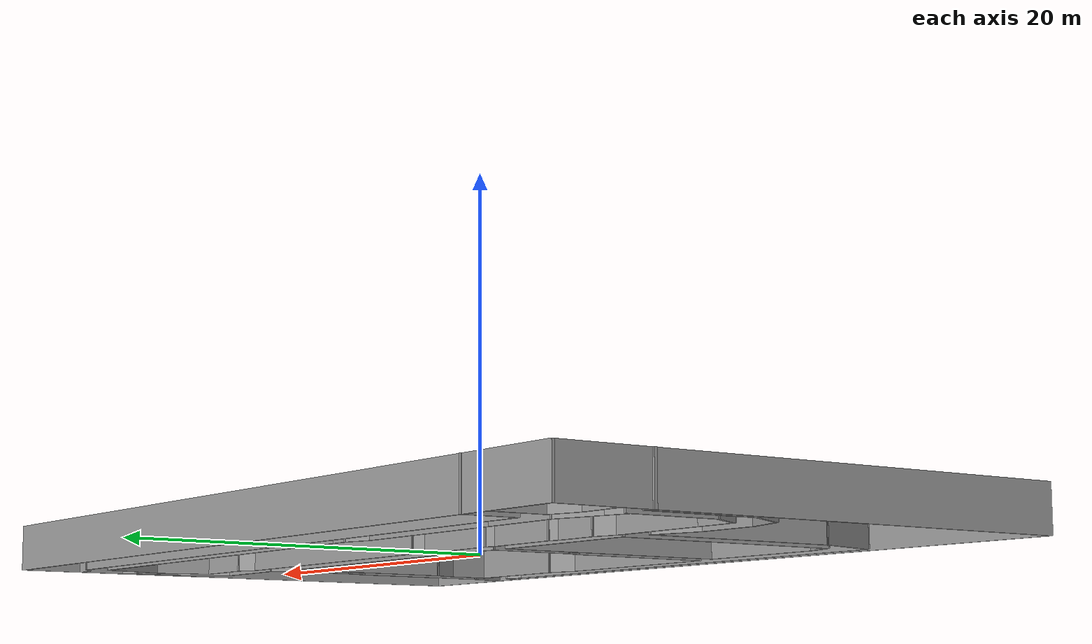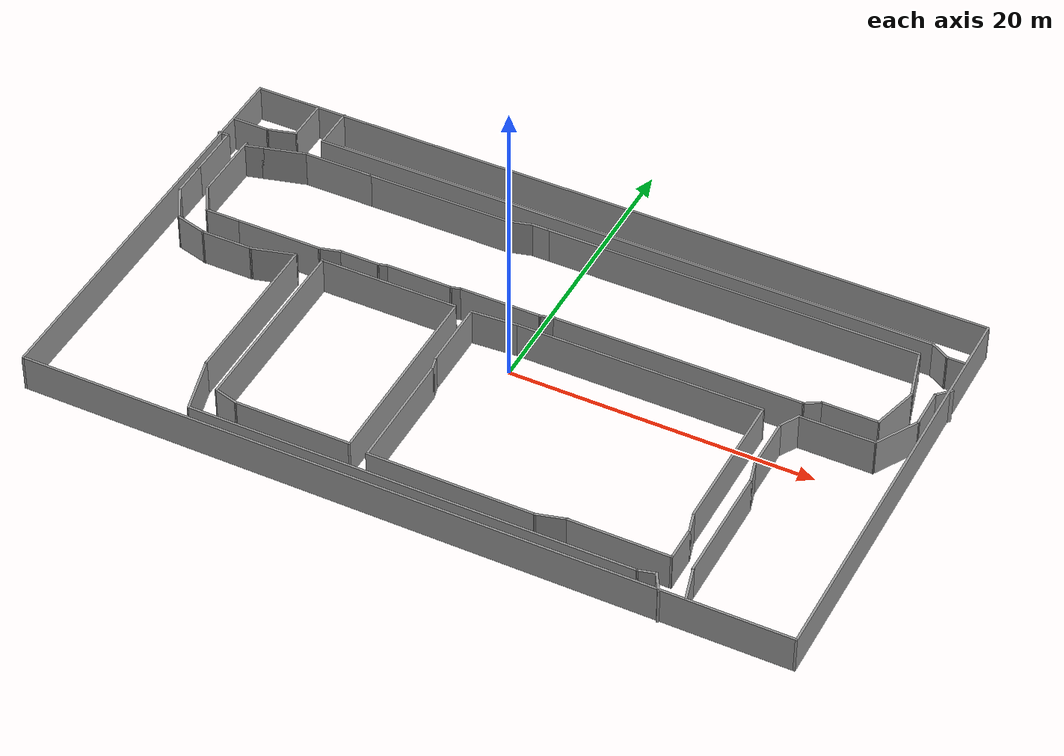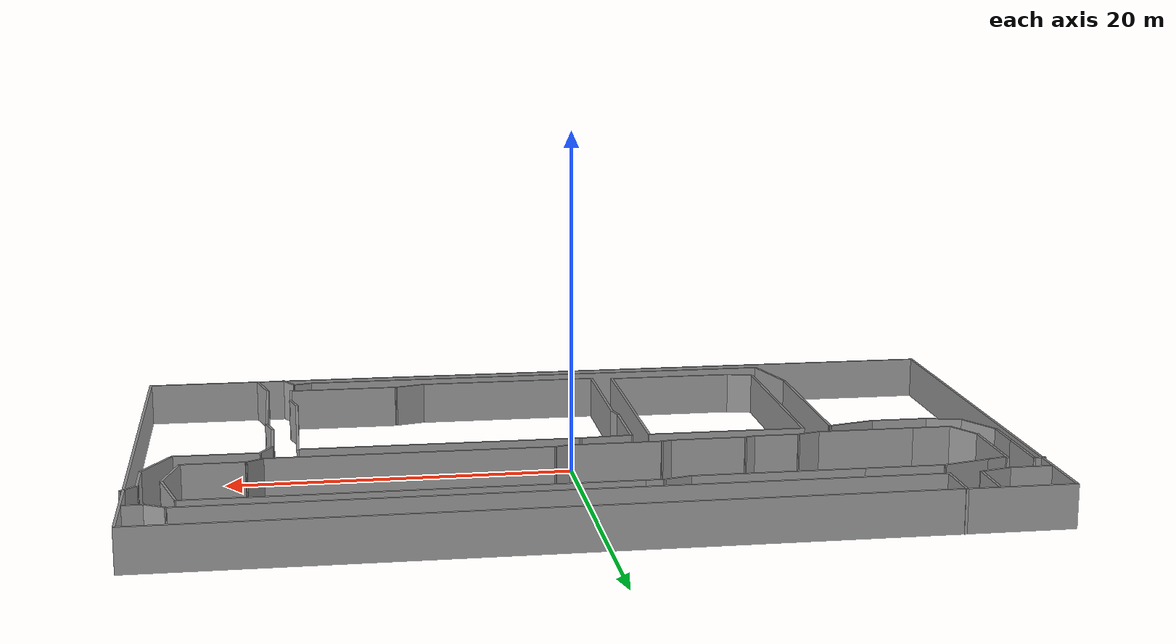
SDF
<?xml version='1.0'?>
<sdf version='1.6'>
  <model name='campus2'>
    <pose frame=''>-0.050458 -0.075306 0 0 -0 0</pose>
    <link name='Wall_100'>
      <collision name='Wall_100_Collision'>
        <geometry>
          <box>
            <size>5.5 0.15 2.5</size>
          </box>
        </geometry>
        <pose frame=''>0 0 1.25 0 -0 0</pose>
      </collision>
      <visual name='Wall_100_Visual'>
        <pose frame=''>0 0 1.25 0 -0 0</pose>
        <geometry>
          <box>
            <size>5.5 0.15 2.5</size>
          </box>
        </geometry>
        <material>
          <script>
            <uri>file://media/materials/scripts/gazebo.material</uri>
            <name>Gazebo/Grey</name>
          </script>
          <ambient>1 1 1 1</ambient>
        </material>
      </visual>
      <pose frame=''>-2.06042 3.03584 0 0 -0 0</pose>
    </link>
    <link name='Wall_101'>
      <collision name='Wall_101_Collision'>
        <geometry>
          <box>
            <size>1 0.15 2.5</size>
          </box>
        </geometry>
        <pose frame=''>0 0 1.25 0 -0 0</pose>
      </collision>
      <visual name='Wall_101_Visual'>
        <pose frame=''>0 0 1.25 0 -0 0</pose>
        <geometry>
          <box>
            <size>1 0.15 2.5</size>
          </box>
        </geometry>
        <material>
          <script>
            <uri>file://media/materials/scripts/gazebo.material</uri>
            <name>Gazebo/Grey</name>
          </script>
          <ambient>1 1 1 1</ambient>
        </material>
      </visual>
      <pose frame=''>1.0251 3.14583 0 0 -0 0.261799</pose>
    </link>
    <link name='Wall_102'>
      <collision name='Wall_102_Collision'>
        <geometry>
          <box>
            <size>16.5 0.15 2.5</size>
          </box>
        </geometry>
        <pose frame=''>0 0 1.25 0 -0 0</pose>
      </collision>
      <visual name='Wall_102_Visual'>
        <pose frame=''>0 0 1.25 0 -0 0</pose>
        <geometry>
          <box>
            <size>16.5 0.15 2.5</size>
          </box>
        </geometry>
        <material>
          <script>
            <uri>file://media/materials/scripts/gazebo.material</uri>
            <name>Gazebo/Grey</name>
          </script>
          <ambient>1 1 1 1</ambient>
        </material>
      </visual>
      <pose frame=''>9.61062 3.25583 0 0 -0 0</pose>
    </link>
    <link name='Wall_103'>
      <collision name='Wall_103_Collision'>
        <geometry>
          <box>
            <size>1.25 0.15 2.5</size>
          </box>
        </geometry>
        <pose frame=''>0 0 1.25 0 -0 0</pose>
      </collision>
      <visual name='Wall_103_Visual'>
        <pose frame=''>0 0 1.25 0 -0 0</pose>
        <geometry>
          <box>
            <size>1.25 0.15 2.5</size>
          </box>
        </geometry>
        <material>
          <script>
            <uri>file://media/materials/scripts/gazebo.material</uri>
            <name>Gazebo/Grey</name>
          </script>
          <ambient>1 1 1 1</ambient>
        </material>
      </visual>
      <pose frame=''>18.2619 3.53083 0 0 -0 0.523599</pose>
    </link>
    <link name='Wall_104'>
      <collision name='Wall_104_Collision'>
        <geometry>
          <box>
            <size>3.75 0.15 2.5</size>
          </box>
        </geometry>
        <pose frame=''>0 0 1.25 0 -0 0</pose>
      </collision>
      <visual name='Wall_104_Visual'>
        <pose frame=''>0 0 1.25 0 -0 0</pose>
        <geometry>
          <box>
            <size>3.75 0.15 2.5</size>
          </box>
        </geometry>
        <material>
          <script>
            <uri>file://media/materials/scripts/gazebo.material</uri>
            <name>Gazebo/Grey</name>
          </script>
          <ambient>1 1 1 1</ambient>
        </material>
      </visual>
      <pose frame=''>20.5382 3.80583 0 0 -0 0</pose>
    </link>
    <link name='Wall_105'>
      <collision name='Wall_105_Collision'>
        <geometry>
          <box>
            <size>3.25 0.15 2.5</size>
          </box>
        </geometry>
        <pose frame=''>0 0 1.25 0 -0 0</pose>
      </collision>
      <visual name='Wall_105_Visual'>
        <pose frame=''>0 0 1.25 0 -0 0</pose>
        <geometry>
          <box>
            <size>3.25 0.15 2.5</size>
          </box>
        </geometry>
        <material>
          <script>
            <uri>file://media/materials/scripts/gazebo.material</uri>
            <name>Gazebo/Grey</name>
          </script>
          <ambient>1 1 1 1</ambient>
        </material>
      </visual>
      <pose frame=''>22.7394 5.30302 0 0 -0 1.309</pose>
    </link>
    <link name='Wall_106'>
      <collision name='Wall_106_Collision'>
        <geometry>
          <box>
            <size>3.75 0.15 2.5</size>
          </box>
        </geometry>
        <pose frame=''>0 0 1.25 0 -0 0</pose>
      </collision>
      <visual name='Wall_106_Visual'>
        <pose frame=''>0 0 1.25 0 -0 0</pose>
        <geometry>
          <box>
            <size>3.75 0.15 2.5</size>
          </box>
        </geometry>
        <material>
          <script>
            <uri>file://media/materials/scripts/gazebo.material</uri>
            <name>Gazebo/Grey</name>
          </script>
          <ambient>1 1 1 1</ambient>
        </material>
      </visual>
      <pose frame=''>22.6747 8.53887 0 0 -0 1.8326</pose>
    </link>
    <link name='Wall_107'>
      <collision name='Wall_107_Collision'>
        <geometry>
          <box>
            <size>24.75 0.15 2.5</size>
          </box>
        </geometry>
        <pose frame=''>0 0 1.25 0 -0 0</pose>
      </collision>
      <visual name='Wall_107_Visual'>
        <pose frame=''>0 0 1.25 0 -0 0</pose>
        <geometry>
          <box>
            <size>24.75 0.15 2.5</size>
          </box>
        </geometry>
        <material>
          <script>
            <uri>file://media/materials/scripts/gazebo.material</uri>
            <name>Gazebo/Grey</name>
          </script>
          <ambient>1 1 1 1</ambient>
        </material>
      </visual>
      <pose frame=''>9.90883 10.2775 0 0 -0 3.14159</pose>
    </link>
    <link name='Wall_108'>
      <collision name='Wall_108_Collision'>
        <geometry>
          <box>
            <size>1.25 0.15 2.5</size>
          </box>
        </geometry>
        <pose frame=''>0 0 1.25 0 -0 0</pose>
      </collision>
      <visual name='Wall_108_Visual'>
        <pose frame=''>0 0 1.25 0 -0 0</pose>
        <geometry>
          <box>
            <size>1.25 0.15 2.5</size>
          </box>
        </geometry>
        <material>
          <script>
            <uri>file://media/materials/scripts/gazebo.material</uri>
            <name>Gazebo/Grey</name>
          </script>
          <ambient>1 1 1 1</ambient>
        </material>
      </visual>
      <pose frame=''>-2.94116 10.2775 0 0 -0 3.14159</pose>
    </link>
    <link name='Wall_109'>
      <collision name='Wall_109_Collision'>
        <geometry>
          <box>
            <size>1.75 0.15 2.5</size>
          </box>
        </geometry>
        <pose frame=''>0 0 1.25 0 -0 0</pose>
      </collision>
      <visual name='Wall_109_Visual'>
        <pose frame=''>0 0 1.25 0 -0 0</pose>
        <geometry>
          <box>
            <size>1.75 0.15 2.5</size>
          </box>
        </geometry>
        <material>
          <script>
            <uri>file://media/materials/scripts/gazebo.material</uri>
            <name>Gazebo/Grey</name>
          </script>
          <ambient>1 1 1 1</ambient>
        </material>
      </visual>
      <pose frame=''>-4.26391 10.0705 0 0 0 -2.87979</pose>
    </link>
    <link name='Wall_110'>
      <collision name='Wall_110_Collision'>
        <geometry>
          <box>
            <size>9.75 0.15 2.5</size>
          </box>
        </geometry>
        <pose frame=''>0 0 1.25 0 -0 0</pose>
      </collision>
      <visual name='Wall_110_Visual'>
        <pose frame=''>0 0 1.25 0 -0 0</pose>
        <geometry>
          <box>
            <size>9.75 0.15 2.5</size>
          </box>
        </geometry>
        <material>
          <script>
            <uri>file://media/materials/scripts/gazebo.material</uri>
            <name>Gazebo/Grey</name>
          </script>
          <ambient>1 1 1 1</ambient>
        </material>
      </visual>
      <pose frame=''>-9.83665 9.86342 0 0 -0 3.14159</pose>
    </link>
    <link name='Wall_111'>
      <collision name='Wall_111_Collision'>
        <geometry>
          <box>
            <size>4.75 0.15 2.5</size>
          </box>
        </geometry>
        <pose frame=''>0 0 1.25 0 -0 0</pose>
      </collision>
      <visual name='Wall_111_Visual'>
        <pose frame=''>0 0 1.25 0 -0 0</pose>
        <geometry>
          <box>
            <size>4.75 0.15 2.5</size>
          </box>
        </geometry>
        <material>
          <script>
            <uri>file://media/materials/scripts/gazebo.material</uri>
            <name>Gazebo/Grey</name>
          </script>
          <ambient>1 1 1 1</ambient>
        </material>
      </visual>
      <pose frame=''>-16.9366 9.86342 0 0 -0 3.14159</pose>
    </link>
    <link name='Wall_112'>
      <collision name='Wall_112_Collision'>
        <geometry>
          <box>
            <size>3 0.15 2.5</size>
          </box>
        </geometry>
        <pose frame=''>0 0 1.25 0 -0 0</pose>
      </collision>
      <visual name='Wall_112_Visual'>
        <pose frame=''>0 0 1.25 0 -0 0</pose>
        <geometry>
          <box>
            <size>3 0.15 2.5</size>
          </box>
        </geometry>
        <material>
          <script>
            <uri>file://media/materials/scripts/gazebo.material</uri>
            <name>Gazebo/Grey</name>
          </script>
          <ambient>1 1 1 1</ambient>
        </material>
      </visual>
      <pose frame=''>-20.6131 9.49461 0 0 0 -2.87979</pose>
    </link>
    <link name='Wall_113'>
      <collision name='Wall_113_Collision'>
        <geometry>
          <box>
            <size>1.25 0.15 2.5</size>
          </box>
        </geometry>
        <pose frame=''>0 0 1.25 0 -0 0</pose>
      </collision>
      <visual name='Wall_113_Visual'>
        <pose frame=''>0 0 1.25 0 -0 0</pose>
        <geometry>
          <box>
            <size>1.25 0.15 2.5</size>
          </box>
        </geometry>
        <material>
          <script>
            <uri>file://media/materials/scripts/gazebo.material</uri>
            <name>Gazebo/Grey</name>
          </script>
          <ambient>1 1 1 1</ambient>
        </material>
      </visual>
      <pose frame=''>-22.5208 8.98344 0 0 0 -2.87979</pose>
    </link>
    <link name='Wall_115'>
      <collision name='Wall_115_Collision'>
        <geometry>
          <box>
            <size>0.75 0.15 2.5</size>
          </box>
        </geometry>
        <pose frame=''>0 0 1.25 0 -0 0</pose>
      </collision>
      <visual name='Wall_115_Visual'>
        <pose frame=''>0 0 1.25 0 -0 0</pose>
        <geometry>
          <box>
            <size>0.75 0.15 2.5</size>
          </box>
        </geometry>
        <material>
          <script>
            <uri>file://media/materials/scripts/gazebo.material</uri>
            <name>Gazebo/Grey</name>
          </script>
          <ambient>1 1 1 1</ambient>
        </material>
      </visual>
      <pose frame=''>-24.8965 9.23068 0 0 -0 0</pose>
    </link>
    <link name='Wall_116'>
      <collision name='Wall_116_Collision'>
        <geometry>
          <box>
            <size>3.75 0.15 2.5</size>
          </box>
        </geometry>
        <pose frame=''>0 0 1.25 0 -0 0</pose>
      </collision>
      <visual name='Wall_116_Visual'>
        <pose frame=''>0 0 1.25 0 -0 0</pose>
        <geometry>
          <box>
            <size>3.75 0.15 2.5</size>
          </box>
        </geometry>
        <material>
          <script>
            <uri>file://media/materials/scripts/gazebo.material</uri>
            <name>Gazebo/Grey</name>
          </script>
          <ambient>1 1 1 1</ambient>
        </material>
      </visual>
      <pose frame=''>-24.5965 7.43068 0 0 0 -1.5708</pose>
    </link>
    <link name='Wall_117'>
      <collision name='Wall_117_Collision'>
        <geometry>
          <box>
            <size>2.5 0.15 2.5</size>
          </box>
        </geometry>
        <pose frame=''>0 0 1.25 0 -0 0</pose>
      </collision>
      <visual name='Wall_117_Visual'>
        <pose frame=''>0 0 1.25 0 -0 0</pose>
        <geometry>
          <box>
            <size>2.5 0.15 2.5</size>
          </box>
        </geometry>
        <material>
          <script>
            <uri>file://media/materials/scripts/gazebo.material</uri>
            <name>Gazebo/Grey</name>
          </script>
          <ambient>1 1 1 1</ambient>
        </material>
      </visual>
      <pose frame=''>-24.5965 4.45568 0 0 0 -1.5708</pose>
    </link>
    <link name='Wall_118'>
      <collision name='Wall_118_Collision'>
        <geometry>
          <box>
            <size>2.75 0.15 2.5</size>
          </box>
        </geometry>
        <pose frame=''>0 0 1.25 0 -0 0</pose>
      </collision>
      <visual name='Wall_118_Visual'>
        <pose frame=''>0 0 1.25 0 -0 0</pose>
        <geometry>
          <box>
            <size>2.75 0.15 2.5</size>
          </box>
        </geometry>
        <material>
          <script>
            <uri>file://media/materials/scripts/gazebo.material</uri>
            <name>Gazebo/Grey</name>
          </script>
          <ambient>1 1 1 1</ambient>
        </material>
      </visual>
      <pose frame=''>-23.9465 2.15485 0 0 0 -1.0472</pose>
    </link>
    <link name='Wall_119'>
      <collision name='Wall_119_Collision'>
        <geometry>
          <box>
            <size>2.25 0.15 2.5</size>
          </box>
        </geometry>
        <pose frame=''>0 0 1.25 0 -0 0</pose>
      </collision>
      <visual name='Wall_119_Visual'>
        <pose frame=''>0 0 1.25 0 -0 0</pose>
        <geometry>
          <box>
            <size>2.25 0.15 2.5</size>
          </box>
        </geometry>
        <material>
          <script>
            <uri>file://media/materials/scripts/gazebo.material</uri>
            <name>Gazebo/Grey</name>
          </script>
          <ambient>1 1 1 1</ambient>
        </material>
      </visual>
      <pose frame=''>-22.2823 0.757255 0 0 0 -0.261799</pose>
    </link>
    <link name='Wall_120'>
      <collision name='Wall_120_Collision'>
        <geometry>
          <box>
            <size>3.5 0.15 2.5</size>
          </box>
        </geometry>
        <pose frame=''>0 0 1.25 0 -0 0</pose>
      </collision>
      <visual name='Wall_120_Visual'>
        <pose frame=''>0 0 1.25 0 -0 0</pose>
        <geometry>
          <box>
            <size>3.5 0.15 2.5</size>
          </box>
        </geometry>
        <material>
          <script>
            <uri>file://media/materials/scripts/gazebo.material</uri>
            <name>Gazebo/Grey</name>
          </script>
          <ambient>1 1 1 1</ambient>
        </material>
      </visual>
      <pose frame=''>-19.5931 0.485495 0 0 -0 0</pose>
    </link>
    <link name='Wall_121'>
      <collision name='Wall_121_Collision'>
        <geometry>
          <box>
            <size>3 0.15 2.5</size>
          </box>
        </geometry>
        <pose frame=''>0 0 1.25 0 -0 0</pose>
      </collision>
      <visual name='Wall_121_Visual'>
        <pose frame=''>0 0 1.25 0 -0 0</pose>
        <geometry>
          <box>
            <size>3 0.15 2.5</size>
          </box>
        </geometry>
        <material>
          <script>
            <uri>file://media/materials/scripts/gazebo.material</uri>
            <name>Gazebo/Grey</name>
          </script>
          <ambient>1 1 1 1</ambient>
        </material>
      </visual>
      <pose frame=''>-16.5416 0.854312 0 0 -0 0.261799</pose>
    </link>
    <link name='Wall_122'>
      <collision name='Wall_122_Collision'>
        <geometry>
          <box>
            <size>11 0.15 2.5</size>
          </box>
        </geometry>
        <pose frame=''>0 0 1.25 0 -0 0</pose>
      </collision>
      <visual name='Wall_122_Visual'>
        <pose frame=''>0 0 1.25 0 -0 0</pose>
        <geometry>
          <box>
            <size>11 0.15 2.5</size>
          </box>
        </geometry>
        <material>
          <script>
            <uri>file://media/materials/scripts/gazebo.material</uri>
            <name>Gazebo/Grey</name>
          </script>
          <ambient>1 1 1 1</ambient>
        </material>
      </visual>
      <pose frame=''>-15.1652 -4.20187 0 0 0 -1.5708</pose>
    </link>
    <link name='Wall_123'>
      <collision name='Wall_123_Collision'>
        <geometry>
          <box>
            <size>4 0.15 2.5</size>
          </box>
        </geometry>
        <pose frame=''>0 0 1.25 0 -0 0</pose>
      </collision>
      <visual name='Wall_123_Visual'>
        <pose frame=''>0 0 1.25 0 -0 0</pose>
        <geometry>
          <box>
            <size>4 0.15 2.5</size>
          </box>
        </geometry>
        <material>
          <script>
            <uri>file://media/materials/scripts/gazebo.material</uri>
            <name>Gazebo/Grey</name>
          </script>
          <ambient>1 1 1 1</ambient>
        </material>
      </visual>
      <pose frame=''>-14.667 -11.4863 0 0 0 -1.309</pose>
    </link>
    <link name='Wall_124'>
      <collision name='Wall_124_Collision'>
        <geometry>
          <box>
            <size>29.25 0.15 2.5</size>
          </box>
        </geometry>
        <pose frame=''>0 0 1.25 0 -0 0</pose>
      </collision>
      <visual name='Wall_124_Visual'>
        <pose frame=''>0 0 1.25 0 -0 0</pose>
        <geometry>
          <box>
            <size>29.25 0.15 2.5</size>
          </box>
        </geometry>
        <material>
          <script>
            <uri>file://media/materials/scripts/gazebo.material</uri>
            <name>Gazebo/Grey</name>
          </script>
          <ambient>1 1 1 1</ambient>
        </material>
      </visual>
      <pose frame=''>0.381263 -13.3457 0 0 -0 0</pose>
    </link>
    <link name='Wall_125'>
      <collision name='Wall_125_Collision'>
        <geometry>
          <box>
            <size>1.25 0.15 2.5</size>
          </box>
        </geometry>
        <pose frame=''>0 0 1.25 0 -0 0</pose>
      </collision>
      <visual name='Wall_125_Visual'>
        <pose frame=''>0 0 1.25 0 -0 0</pose>
        <geometry>
          <box>
            <size>1.25 0.15 2.5</size>
          </box>
        </geometry>
        <material>
          <script>
            <uri>file://media/materials/scripts/gazebo.material</uri>
            <name>Gazebo/Grey</name>
          </script>
          <ambient>1 1 1 1</ambient>
        </material>
      </visual>
      <pose frame=''>15.4625 -13.2033 0 0 -0 0.261799</pose>
    </link>
    <link name='Wall_126'>
      <collision name='Wall_126_Collision'>
        <geometry>
          <box>
            <size>1.5 0.15 2.5</size>
          </box>
        </geometry>
        <pose frame=''>0 0 1.25 0 -0 0</pose>
      </collision>
      <visual name='Wall_126_Visual'>
        <pose frame=''>0 0 1.25 0 -0 0</pose>
        <geometry>
          <box>
            <size>1.5 0.15 2.5</size>
          </box>
        </geometry>
        <material>
          <script>
            <uri>file://media/materials/scripts/gazebo.material</uri>
            <name>Gazebo/Grey</name>
          </script>
          <ambient>1 1 1 1</ambient>
        </material>
      </visual>
      <pose frame=''>16.3313 -13.6456 0 0 0 -1.0472</pose>
    </link>
    <link name='Wall_128'>
      <collision name='Wall_128_Collision'>
        <geometry>
          <box>
            <size>1.25 0.15 2.5</size>
          </box>
        </geometry>
        <pose frame=''>0 0 1.25 0 -0 0</pose>
      </collision>
      <visual name='Wall_128_Visual'>
        <pose frame=''>0 0 1.25 0 -0 0</pose>
        <geometry>
          <box>
            <size>1.25 0.15 2.5</size>
          </box>
        </geometry>
        <material>
          <script>
            <uri>file://media/materials/scripts/gazebo.material</uri>
            <name>Gazebo/Grey</name>
          </script>
          <ambient>1 1 1 1</ambient>
        </material>
      </visual>
      <pose frame=''>24.7765 7.81778 0 0 0 -2.35619</pose>
    </link>
    <link name='Wall_129'>
      <collision name='Wall_129_Collision'>
        <geometry>
          <box>
            <size>2.75 0.15 2.5</size>
          </box>
        </geometry>
        <pose frame=''>0 0 1.25 0 -0 0</pose>
      </collision>
      <visual name='Wall_129_Visual'>
        <pose frame=''>0 0 1.25 0 -0 0</pose>
        <geometry>
          <box>
            <size>2.75 0.15 2.5</size>
          </box>
        </geometry>
        <material>
          <script>
            <uri>file://media/materials/scripts/gazebo.material</uri>
            <name>Gazebo/Grey</name>
          </script>
          <ambient>1 1 1 1</ambient>
        </material>
      </visual>
      <pose frame=''>24.3876 6.12887 0 0 0 -1.5708</pose>
    </link>
    <link name='Wall_130'>
      <collision name='Wall_130_Collision'>
        <geometry>
          <box>
            <size>3.25 0.15 2.5</size>
          </box>
        </geometry>
        <pose frame=''>0 0 1.25 0 -0 0</pose>
      </collision>
      <visual name='Wall_130_Visual'>
        <pose frame=''>0 0 1.25 0 -0 0</pose>
        <geometry>
          <box>
            <size>3.25 0.15 2.5</size>
          </box>
        </geometry>
        <material>
          <script>
            <uri>file://media/materials/scripts/gazebo.material</uri>
            <name>Gazebo/Grey</name>
          </script>
          <ambient>1 1 1 1</ambient>
        </material>
      </visual>
      <pose frame=''>23.6126 3.48653 0 0 0 -2.0944</pose>
    </link>
    <link name='Wall_131'>
      <collision name='Wall_131_Collision'>
        <geometry>
          <box>
            <size>5 0.15 2.5</size>
          </box>
        </geometry>
        <pose frame=''>0 0 1.25 0 -0 0</pose>
      </collision>
      <visual name='Wall_131_Visual'>
        <pose frame=''>0 0 1.25 0 -0 0</pose>
        <geometry>
          <box>
            <size>5 0.15 2.5</size>
          </box>
        </geometry>
        <material>
          <script>
            <uri>file://media/materials/scripts/gazebo.material</uri>
            <name>Gazebo/Grey</name>
          </script>
          <ambient>1 1 1 1</ambient>
        </material>
      </visual>
      <pose frame=''>20.4126 2.14419 0 0 -0 3.14159</pose>
    </link>
    <link name='Wall_132'>
      <collision name='Wall_132_Collision'>
        <geometry>
          <box>
            <size>1.5 0.15 2.5</size>
          </box>
        </geometry>
        <pose frame=''>0 0 1.25 0 -0 0</pose>
      </collision>
      <visual name='Wall_132_Visual'>
        <pose frame=''>0 0 1.25 0 -0 0</pose>
        <geometry>
          <box>
            <size>1.5 0.15 2.5</size>
          </box>
        </geometry>
        <material>
          <script>
            <uri>file://media/materials/scripts/gazebo.material</uri>
            <name>Gazebo/Grey</name>
          </script>
          <ambient>1 1 1 1</ambient>
        </material>
      </visual>
      <pose frame=''>17.6501 1.55962 0 0 0 -2.0944</pose>
    </link>
    <link name='Wall_133'>
      <collision name='Wall_133_Collision'>
        <geometry>
          <box>
            <size>3.75 0.15 2.5</size>
          </box>
        </geometry>
        <pose frame=''>0 0 1.25 0 -0 0</pose>
      </collision>
      <visual name='Wall_133_Visual'>
        <pose frame=''>0 0 1.25 0 -0 0</pose>
        <geometry>
          <box>
            <size>3.75 0.15 2.5</size>
          </box>
        </geometry>
        <material>
          <script>
            <uri>file://media/materials/scripts/gazebo.material</uri>
            <name>Gazebo/Grey</name>
          </script>
          <ambient>1 1 1 1</ambient>
        </material>
      </visual>
      <pose frame=''>17.3126 -0.824945 0 0 0 -1.5708</pose>
    </link>
    <link name='Wall_134'>
      <collision name='Wall_134_Collision'>
        <geometry>
          <box>
            <size>1.5 0.15 2.5</size>
          </box>
        </geometry>
        <pose frame=''>0 0 1.25 0 -0 0</pose>
      </collision>
      <visual name='Wall_134_Visual'>
        <pose frame=''>0 0 1.25 0 -0 0</pose>
        <geometry>
          <box>
            <size>1.5 0.15 2.5</size>
          </box>
        </geometry>
        <material>
          <script>
            <uri>file://media/materials/scripts/gazebo.material</uri>
            <name>Gazebo/Grey</name>
          </script>
          <ambient>1 1 1 1</ambient>
        </material>
      </visual>
      <pose frame=''>17.4873 -3.27694 0 0 0 -1.309</pose>
    </link>
    <link name='Wall_135'>
      <collision name='Wall_135_Collision'>
        <geometry>
          <box>
            <size>8 0.15 2.5</size>
          </box>
        </geometry>
        <pose frame=''>0 0 1.25 0 -0 0</pose>
      </collision>
      <visual name='Wall_135_Visual'>
        <pose frame=''>0 0 1.25 0 -0 0</pose>
        <geometry>
          <box>
            <size>8 0.15 2.5</size>
          </box>
        </geometry>
        <material>
          <script>
            <uri>file://media/materials/scripts/gazebo.material</uri>
            <name>Gazebo/Grey</name>
          </script>
          <ambient>1 1 1 1</ambient>
        </material>
      </visual>
      <pose frame=''>17.662 -7.85395 0 0 0 -1.5708</pose>
    </link>
    <link name='Wall_136'>
      <collision name='Wall_136_Collision'>
        <geometry>
          <box>
            <size>2.5 0.15 2.5</size>
          </box>
        </geometry>
        <pose frame=''>0 0 1.25 0 -0 0</pose>
      </collision>
      <visual name='Wall_136_Visual'>
        <pose frame=''>0 0 1.25 0 -0 0</pose>
        <geometry>
          <box>
            <size>2.5 0.15 2.5</size>
          </box>
        </geometry>
        <material>
          <script>
            <uri>file://media/materials/scripts/gazebo.material</uri>
            <name>Gazebo/Grey</name>
          </script>
          <ambient>1 1 1 1</ambient>
        </material>
      </visual>
      <pose frame=''>17.9662 -12.9139 0 0 0 -1.309</pose>
    </link>
    <link name='Wall_138'>
      <collision name='Wall_138_Collision'>
        <geometry>
          <box>
            <size>9.25 0.15 2.5</size>
          </box>
        </geometry>
        <pose frame=''>0 0 1.25 0 -0 0</pose>
      </collision>
      <visual name='Wall_138_Visual'>
        <pose frame=''>0 0 1.25 0 -0 0</pose>
        <geometry>
          <box>
            <size>9.25 0.15 2.5</size>
          </box>
        </geometry>
        <material>
          <script>
            <uri>file://media/materials/scripts/gazebo.material</uri>
            <name>Gazebo/Grey</name>
          </script>
          <ambient>1 1 1 1</ambient>
        </material>
      </visual>
      <pose frame=''>-8.89424 1.50417 0 0 -0 3.14159</pose>
    </link>
    <link name='Wall_139'>
      <collision name='Wall_139_Collision'>
        <geometry>
          <box>
            <size>13 0.15 2.5</size>
          </box>
        </geometry>
        <pose frame=''>0 0 1.25 0 -0 0</pose>
      </collision>
      <visual name='Wall_139_Visual'>
        <pose frame=''>0 0 1.25 0 -0 0</pose>
        <geometry>
          <box>
            <size>13 0.15 2.5</size>
          </box>
        </geometry>
        <material>
          <script>
            <uri>file://media/materials/scripts/gazebo.material</uri>
            <name>Gazebo/Grey</name>
          </script>
          <ambient>1 1 1 1</ambient>
        </material>
      </visual>
      <pose frame=''>-13.4442 -4.92083 0 0 0 -1.5708</pose>
    </link>
    <link name='Wall_140'>
      <collision name='Wall_140_Collision'>
        <geometry>
          <box>
            <size>1.75 0.15 2.5</size>
          </box>
        </geometry>
        <pose frame=''>0 0 1.25 0 -0 0</pose>
      </collision>
      <visual name='Wall_140_Visual'>
        <pose frame=''>0 0 1.25 0 -0 0</pose>
        <geometry>
          <box>
            <size>1.75 0.15 2.5</size>
          </box>
        </geometry>
        <material>
          <script>
            <uri>file://media/materials/scripts/gazebo.material</uri>
            <name>Gazebo/Grey</name>
          </script>
          <ambient>1 1 1 1</ambient>
        </material>
      </visual>
      <pose frame=''>-12.6715 -11.5529 0 0 0 -0.261799</pose>
    </link>
    <link name='Wall_141'>
      <collision name='Wall_141_Collision'>
        <geometry>
          <box>
            <size>7.75 0.15 2.5</size>
          </box>
        </geometry>
        <pose frame=''>0 0 1.25 0 -0 0</pose>
      </collision>
      <visual name='Wall_141_Visual'>
        <pose frame=''>0 0 1.25 0 -0 0</pose>
        <geometry>
          <box>
            <size>7.75 0.15 2.5</size>
          </box>
        </geometry>
        <material>
          <script>
            <uri>file://media/materials/scripts/gazebo.material</uri>
            <name>Gazebo/Grey</name>
          </script>
          <ambient>1 1 1 1</ambient>
        </material>
      </visual>
      <pose frame=''>-8.09876 -11.7599 0 0 -0 0</pose>
    </link>
    <link name='Wall_142'>
      <collision name='Wall_142_Collision'>
        <geometry>
          <box>
            <size>13.25 0.15 2.5</size>
          </box>
        </geometry>
        <pose frame=''>0 0 1.25 0 -0 0</pose>
      </collision>
      <visual name='Wall_142_Visual'>
        <pose frame=''>0 0 1.25 0 -0 0</pose>
        <geometry>
          <box>
            <size>13.25 0.15 2.5</size>
          </box>
        </geometry>
        <material>
          <script>
            <uri>file://media/materials/scripts/gazebo.material</uri>
            <name>Gazebo/Grey</name>
          </script>
          <ambient>1 1 1 1</ambient>
        </material>
      </visual>
      <pose frame=''>-4.29876 -5.20994 0 0 -0 1.5708</pose>
    </link>
    <link name='Wall_144'>
      <collision name='Wall_144_Collision'>
        <geometry>
          <box>
            <size>4.75 0.15 2.5</size>
          </box>
        </geometry>
        <pose frame=''>0 0 1.25 0 -0 0</pose>
      </collision>
      <visual name='Wall_144_Visual'>
        <pose frame=''>0 0 1.25 0 -0 0</pose>
        <geometry>
          <box>
            <size>4.75 0.15 2.5</size>
          </box>
        </geometry>
        <material>
          <script>
            <uri>file://media/materials/scripts/gazebo.material</uri>
            <name>Gazebo/Grey</name>
          </script>
          <ambient>1 1 1 1</ambient>
        </material>
      </visual>
      <pose frame=''>-3.22716 -0.795833 0 0 0 -1.5708</pose>
    </link>
    <link name='Wall_145'>
      <collision name='Wall_145_Collision'>
        <geometry>
          <box>
            <size>1 0.15 2.5</size>
          </box>
        </geometry>
        <pose frame=''>0 0 1.25 0 -0 0</pose>
      </collision>
      <visual name='Wall_145_Visual'>
        <pose frame=''>0 0 1.25 0 -0 0</pose>
        <geometry>
          <box>
            <size>1 0.15 2.5</size>
          </box>
        </geometry>
        <material>
          <script>
            <uri>file://media/materials/scripts/gazebo.material</uri>
            <name>Gazebo/Grey</name>
          </script>
          <ambient>1 1 1 1</ambient>
        </material>
      </visual>
      <pose frame=''>-3.11716 -3.50635 0 0 0 -1.309</pose>
    </link>
    <link name='Wall_146'>
      <collision name='Wall_146_Collision'>
        <geometry>
          <box>
            <size>8.25 0.15 2.5</size>
          </box>
        </geometry>
        <pose frame=''>0 0 1.25 0 -0 0</pose>
      </collision>
      <visual name='Wall_146_Visual'>
        <pose frame=''>0 0 1.25 0 -0 0</pose>
        <geometry>
          <box>
            <size>8.25 0.15 2.5</size>
          </box>
        </geometry>
        <material>
          <script>
            <uri>file://media/materials/scripts/gazebo.material</uri>
            <name>Gazebo/Grey</name>
          </script>
          <ambient>1 1 1 1</ambient>
        </material>
      </visual>
      <pose frame=''>-3.00716 -7.96687 0 0 0 -1.5708</pose>
    </link>
    <link name='Wall_147'>
      <collision name='Wall_147_Collision'>
        <geometry>
          <box>
            <size>11 0.15 2.5</size>
          </box>
        </geometry>
        <pose frame=''>0 0 1.25 0 -0 0</pose>
      </collision>
      <visual name='Wall_147_Visual'>
        <pose frame=''>0 0 1.25 0 -0 0</pose>
        <geometry>
          <box>
            <size>11 0.15 2.5</size>
          </box>
        </geometry>
        <material>
          <script>
            <uri>file://media/materials/scripts/gazebo.material</uri>
            <name>Gazebo/Grey</name>
          </script>
          <ambient>1 1 1 1</ambient>
        </material>
      </visual>
      <pose frame=''>2.41784 -12.0169 0 0 -0 0</pose>
    </link>
    <link name='Wall_148'>
      <collision name='Wall_148_Collision'>
        <geometry>
          <box>
            <size>2 0.15 2.5</size>
          </box>
        </geometry>
        <pose frame=''>0 0 1.25 0 -0 0</pose>
      </collision>
      <visual name='Wall_148_Visual'>
        <pose frame=''>0 0 1.25 0 -0 0</pose>
        <geometry>
          <box>
            <size>2 0.15 2.5</size>
          </box>
        </geometry>
        <material>
          <script>
            <uri>file://media/materials/scripts/gazebo.material</uri>
            <name>Gazebo/Grey</name>
          </script>
          <ambient>1 1 1 1</ambient>
        </material>
      </visual>
      <pose frame=''>8.73632 -11.7775 0 0 -0 0.261799</pose>
    </link>
    <link name='Wall_149'>
      <collision name='Wall_149_Collision'>
        <geometry>
          <box>
            <size>6.75 0.15 2.5</size>
          </box>
        </geometry>
        <pose frame=''>0 0 1.25 0 -0 0</pose>
      </collision>
      <visual name='Wall_149_Visual'>
        <pose frame=''>0 0 1.25 0 -0 0</pose>
        <geometry>
          <box>
            <size>6.75 0.15 2.5</size>
          </box>
        </geometry>
        <material>
          <script>
            <uri>file://media/materials/scripts/gazebo.material</uri>
            <name>Gazebo/Grey</name>
          </script>
          <ambient>1 1 1 1</ambient>
        </material>
      </visual>
      <pose frame=''>12.9298 -11.5381 0 0 -0 0</pose>
    </link>
    <link name='Wall_150'>
      <collision name='Wall_150_Collision'>
        <geometry>
          <box>
            <size>2.5 0.15 2.5</size>
          </box>
        </geometry>
        <pose frame=''>0 0 1.25 0 -0 0</pose>
      </collision>
      <visual name='Wall_150_Visual'>
        <pose frame=''>0 0 1.25 0 -0 0</pose>
        <geometry>
          <box>
            <size>2.5 0.15 2.5</size>
          </box>
        </geometry>
        <material>
          <script>
            <uri>file://media/materials/scripts/gazebo.material</uri>
            <name>Gazebo/Grey</name>
          </script>
          <ambient>1 1 1 1</ambient>
        </material>
      </visual>
      <pose frame=''>16.2298 -10.3631 0 0 -0 1.5708</pose>
    </link>
    <link name='Wall_151'>
      <collision name='Wall_151_Collision'>
        <geometry>
          <box>
            <size>1.5 0.15 2.5</size>
          </box>
        </geometry>
        <pose frame=''>0 0 1.25 0 -0 0</pose>
      </collision>
      <visual name='Wall_151_Visual'>
        <pose frame=''>0 0 1.25 0 -0 0</pose>
        <geometry>
          <box>
            <size>1.5 0.15 2.5</size>
          </box>
        </geometry>
        <material>
          <script>
            <uri>file://media/materials/scripts/gazebo.material</uri>
            <name>Gazebo/Grey</name>
          </script>
          <ambient>1 1 1 1</ambient>
        </material>
      </visual>
      <pose frame=''>16.0551 -8.53605 0 0 -0 1.8326</pose>
    </link>
    <link name='Wall_152'>
      <collision name='Wall_152_Collision'>
        <geometry>
          <box>
            <size>9.75 0.15 2.5</size>
          </box>
        </geometry>
        <pose frame=''>0 0 1.25 0 -0 0</pose>
      </collision>
      <visual name='Wall_152_Visual'>
        <pose frame=''>0 0 1.25 0 -0 0</pose>
        <geometry>
          <box>
            <size>9.75 0.15 2.5</size>
          </box>
        </geometry>
        <material>
          <script>
            <uri>file://media/materials/scripts/gazebo.material</uri>
            <name>Gazebo/Grey</name>
          </script>
          <ambient>1 1 1 1</ambient>
        </material>
      </visual>
      <pose frame=''>15.8804 -3.08406 0 0 -0 1.5708</pose>
    </link>
    <link name='Wall_153'>
      <collision name='Wall_153_Collision'>
        <geometry>
          <box>
            <size>16.25 0.15 2.5</size>
          </box>
        </geometry>
        <pose frame=''>0 0 1.25 0 -0 0</pose>
      </collision>
      <visual name='Wall_153_Visual'>
        <pose frame=''>0 0 1.25 0 -0 0</pose>
        <geometry>
          <box>
            <size>16.25 0.15 2.5</size>
          </box>
        </geometry>
        <material>
          <script>
            <uri>file://media/materials/scripts/gazebo.material</uri>
            <name>Gazebo/Grey</name>
          </script>
          <ambient>1 1 1 1</ambient>
        </material>
      </visual>
      <pose frame=''>7.8304 1.71595 0 0 -0 3.14159</pose>
    </link>
    <link name='Wall_154'>
      <collision name='Wall_154_Collision'>
        <geometry>
          <box>
            <size>3.165 0.15 2.5</size>
          </box>
        </geometry>
        <pose frame=''>0 0 1.25 0 -0 0</pose>
      </collision>
      <visual name='Wall_154_Visual'>
        <pose frame=''>0 0 1.25 0 -0 0</pose>
        <geometry>
          <box>
            <size>3.165 0.15 2.5</size>
          </box>
        </geometry>
        <material>
          <script>
            <uri>file://media/materials/scripts/gazebo.material</uri>
            <name>Gazebo/Grey</name>
          </script>
          <ambient>1 1 1 1</ambient>
        </material>
      </visual>
      <pose frame=''>-1.72338 1.61006 0 0 0 -3.07129</pose>
    </link>
    <link name='Wall_74'>
      <collision name='Wall_74_Collision'>
        <geometry>
          <box>
            <size>28.5 0.15 2.5</size>
          </box>
        </geometry>
        <pose frame=''>0 0 1.25 0 -0 0</pose>
      </collision>
      <visual name='Wall_74_Visual'>
        <pose frame=''>0 0 1.25 0 -0 0</pose>
        <geometry>
          <box>
            <size>28.5 0.15 2.5</size>
          </box>
        </geometry>
        <material>
          <script>
            <uri>file://media/materials/scripts/gazebo.material</uri>
            <name>Gazebo/Grey</name>
          </script>
          <ambient>1 1 1 1</ambient>
        </material>
      </visual>
      <pose frame=''>-25.077 0.045872 0 0 0 -1.5708</pose>
    </link>
    <link name='Wall_75'>
      <collision name='Wall_75_Collision'>
        <geometry>
          <box>
            <size>50.25 0.15 2.5</size>
          </box>
        </geometry>
        <pose frame=''>0 0 1.25 0 -0 0</pose>
      </collision>
      <visual name='Wall_75_Visual'>
        <pose frame=''>0 0 1.25 0 -0 0</pose>
        <geometry>
          <box>
            <size>50.25 0.15 2.5</size>
          </box>
        </geometry>
        <material>
          <script>
            <uri>file://media/materials/scripts/gazebo.material</uri>
            <name>Gazebo/Grey</name>
          </script>
          <ambient>1 1 1 1</ambient>
        </material>
      </visual>
      <pose frame=''>-0.027018 -14.1291 0 0 -0 0</pose>
    </link>
    <link name='Wall_76'>
      <collision name='Wall_76_Collision'>
        <geometry>
          <box>
            <size>28.5 0.15 2.5</size>
          </box>
        </geometry>
        <pose frame=''>0 0 1.25 0 -0 0</pose>
      </collision>
      <visual name='Wall_76_Visual'>
        <pose frame=''>0 0 1.25 0 -0 0</pose>
        <geometry>
          <box>
            <size>28.5 0.15 2.5</size>
          </box>
        </geometry>
        <material>
          <script>
            <uri>file://media/materials/scripts/gazebo.material</uri>
            <name>Gazebo/Grey</name>
          </script>
          <ambient>1 1 1 1</ambient>
        </material>
      </visual>
      <pose frame=''>25.023 0.045872 0 0 -0 1.5708</pose>
    </link>
    <link name='Wall_79'>
      <collision name='Wall_79_Collision'>
        <geometry>
          <box>
            <size>50.25 0.15 2.5</size>
          </box>
        </geometry>
        <pose frame=''>0 0 1.25 0 -0 0</pose>
      </collision>
      <visual name='Wall_79_Visual'>
        <pose frame=''>0 0 1.25 0 -0 0</pose>
        <geometry>
          <box>
            <size>50.25 0.15 2.5</size>
          </box>
        </geometry>
        <material>
          <script>
            <uri>file://media/materials/scripts/gazebo.material</uri>
            <name>Gazebo/Grey</name>
          </script>
          <ambient>1 1 1 1</ambient>
        </material>
      </visual>
      <pose frame=''>-0.027018 14.2209 0 0 -0 0</pose>
    </link>
    <link name='Wall_82'>
      <collision name='Wall_82_Collision'>
        <geometry>
          <box>
            <size>3 0.15 2.5</size>
          </box>
        </geometry>
        <pose frame=''>0 0 1.25 0 -0 0</pose>
      </collision>
      <visual name='Wall_82_Visual'>
        <pose frame=''>0 0 1.25 0 -0 0</pose>
        <geometry>
          <box>
            <size>3 0.15 2.5</size>
          </box>
        </geometry>
        <material>
          <script>
            <uri>file://media/materials/scripts/gazebo.material</uri>
            <name>Gazebo/Grey</name>
          </script>
          <ambient>1 1 1 1</ambient>
        </material>
      </visual>
      <pose frame=''>-20.8213 12.7395 0 0 0 -1.5708</pose>
    </link>
    <link name='Wall_83'>
      <collision name='Wall_83_Collision'>
        <geometry>
          <box>
            <size>2 0.15 2.5</size>
          </box>
        </geometry>
        <pose frame=''>0 0 1.25 0 -0 0</pose>
      </collision>
      <visual name='Wall_83_Visual'>
        <pose frame=''>0 0 1.25 0 -0 0</pose>
        <geometry>
          <box>
            <size>2 0.15 2.5</size>
          </box>
        </geometry>
        <material>
          <script>
            <uri>file://media/materials/scripts/gazebo.material</uri>
            <name>Gazebo/Grey</name>
          </script>
          <ambient>1 1 1 1</ambient>
        </material>
      </visual>
      <pose frame=''>-21.7147 11.0751 0 0 0 -2.87979</pose>
    </link>
    <link name='Wall_84'>
      <collision name='Wall_84_Collision'>
        <geometry>
          <box>
            <size>2.5 0.15 2.5</size>
          </box>
        </geometry>
        <pose frame=''>0 0 1.25 0 -0 0</pose>
      </collision>
      <visual name='Wall_84_Visual'>
        <pose frame=''>0 0 1.25 0 -0 0</pose>
        <geometry>
          <box>
            <size>2.5 0.15 2.5</size>
          </box>
        </geometry>
        <material>
          <script>
            <uri>file://media/materials/scripts/gazebo.material</uri>
            <name>Gazebo/Grey</name>
          </script>
          <ambient>1 1 1 1</ambient>
        </material>
      </visual>
      <pose frame=''>-23.7832 10.8357 0 0 -0 3.14159</pose>
    </link>
    <link name='Wall_86'>
      <collision name='Wall_86_Collision'>
        <geometry>
          <box>
            <size>3 0.15 2.5</size>
          </box>
        </geometry>
        <pose frame=''>0 0 1.25 0 -0 0</pose>
      </collision>
      <visual name='Wall_86_Visual'>
        <pose frame=''>0 0 1.25 0 -0 0</pose>
        <geometry>
          <box>
            <size>3 0.15 2.5</size>
          </box>
        </geometry>
        <material>
          <script>
            <uri>file://media/materials/scripts/gazebo.material</uri>
            <name>Gazebo/Grey</name>
          </script>
          <ambient>1 1 1 1</ambient>
        </material>
      </visual>
      <pose frame=''>-18.9595 12.8326 0 0 0 -1.5708</pose>
    </link>
    <link name='Wall_87'>
      <collision name='Wall_87_Collision'>
        <geometry>
          <box>
            <size>41.75 0.15 2.5</size>
          </box>
        </geometry>
        <pose frame=''>0 0 1.25 0 -0 0</pose>
      </collision>
      <visual name='Wall_87_Visual'>
        <pose frame=''>0 0 1.25 0 -0 0</pose>
        <geometry>
          <box>
            <size>41.75 0.15 2.5</size>
          </box>
        </geometry>
        <material>
          <script>
            <uri>file://media/materials/scripts/gazebo.material</uri>
            <name>Gazebo/Grey</name>
          </script>
          <ambient>1 1 1 1</ambient>
        </material>
      </visual>
      <pose frame=''>1.84054 11.4076 0 0 -0 0</pose>
    </link>
    <link name='Wall_88'>
      <collision name='Wall_88_Collision'>
        <geometry>
          <box>
            <size>1.5 0.15 2.5</size>
          </box>
        </geometry>
        <pose frame=''>0 0 1.25 0 -0 0</pose>
      </collision>
      <visual name='Wall_88_Visual'>
        <pose frame=''>0 0 1.25 0 -0 0</pose>
        <geometry>
          <box>
            <size>1.5 0.15 2.5</size>
          </box>
        </geometry>
        <material>
          <script>
            <uri>file://media/materials/scripts/gazebo.material</uri>
            <name>Gazebo/Grey</name>
          </script>
          <ambient>1 1 1 1</ambient>
        </material>
      </visual>
      <pose frame=''>23.2251 11.0701 0 0 0 -0.523599</pose>
    </link>
    <link name='Wall_89'>
      <collision name='Wall_89_Collision'>
        <geometry>
          <box>
            <size>1.25 0.15 2.5</size>
          </box>
        </geometry>
        <pose frame=''>0 0 1.25 0 -0 0</pose>
      </collision>
      <visual name='Wall_89_Visual'>
        <pose frame=''>0 0 1.25 0 -0 0</pose>
        <geometry>
          <box>
            <size>1.25 0.15 2.5</size>
          </box>
        </geometry>
        <material>
          <script>
            <uri>file://media/materials/scripts/gazebo.material</uri>
            <name>Gazebo/Grey</name>
          </script>
          <ambient>1 1 1 1</ambient>
        </material>
      </visual>
      <pose frame=''>24.3597 10.7326 0 0 -0 0</pose>
    </link>
    <link name='Wall_91'>
      <collision name='Wall_91_Collision'>
        <geometry>
          <box>
            <size>5 0.15 2.5</size>
          </box>
        </geometry>
        <pose frame=''>0 0 1.25 0 -0 0</pose>
      </collision>
      <visual name='Wall_91_Visual'>
        <pose frame=''>0 0 1.25 0 -0 0</pose>
        <geometry>
          <box>
            <size>5 0.15 2.5</size>
          </box>
        </geometry>
        <material>
          <script>
            <uri>file://media/materials/scripts/gazebo.material</uri>
            <name>Gazebo/Grey</name>
          </script>
          <ambient>1 1 1 1</ambient>
        </material>
      </visual>
      <pose frame=''>-23.1485 6.6195 0 0 0 -1.5708</pose>
    </link>
    <link name='Wall_92'>
      <collision name='Wall_92_Collision'>
        <geometry>
          <box>
            <size>2.25 0.15 2.5</size>
          </box>
        </geometry>
        <pose frame=''>0 0 1.25 0 -0 0</pose>
      </collision>
      <visual name='Wall_92_Visual'>
        <pose frame=''>0 0 1.25 0 -0 0</pose>
        <geometry>
          <box>
            <size>2.25 0.15 2.5</size>
          </box>
        </geometry>
        <material>
          <script>
            <uri>file://media/materials/scripts/gazebo.material</uri>
            <name>Gazebo/Grey</name>
          </script>
          <ambient>1 1 1 1</ambient>
        </material>
      </visual>
      <pose frame=''>-22.6235 3.28517 0 0 0 -1.0472</pose>
    </link>
    <link name='Wall_93'>
      <collision name='Wall_93_Collision'>
        <geometry>
          <box>
            <size>2.5 0.15 2.5</size>
          </box>
        </geometry>
        <pose frame=''>0 0 1.25 0 -0 0</pose>
      </collision>
      <visual name='Wall_93_Visual'>
        <pose frame=''>0 0 1.25 0 -0 0</pose>
        <geometry>
          <box>
            <size>2.5 0.15 2.5</size>
          </box>
        </geometry>
        <material>
          <script>
            <uri>file://media/materials/scripts/gazebo.material</uri>
            <name>Gazebo/Grey</name>
          </script>
          <ambient>1 1 1 1</ambient>
        </material>
      </visual>
      <pose frame=''>-20.9235 2.37585 0 0 -0 0</pose>
    </link>
    <link name='Wall_94'>
      <collision name='Wall_94_Collision'>
        <geometry>
          <box>
            <size>5.75 0.15 2.5</size>
          </box>
        </geometry>
        <pose frame=''>0 0 1.25 0 -0 0</pose>
      </collision>
      <visual name='Wall_94_Visual'>
        <pose frame=''>0 0 1.25 0 -0 0</pose>
        <geometry>
          <box>
            <size>5.75 0.15 2.5</size>
          </box>
        </geometry>
        <material>
          <script>
            <uri>file://media/materials/scripts/gazebo.material</uri>
            <name>Gazebo/Grey</name>
          </script>
          <ambient>1 1 1 1</ambient>
        </material>
      </visual>
      <pose frame=''>-16.9485 2.37585 0 0 -0 0</pose>
    </link>
    <link name='Wall_95'>
      <collision name='Wall_95_Collision'>
        <geometry>
          <box>
            <size>1.5 0.15 2.5</size>
          </box>
        </geometry>
        <pose frame=''>0 0 1.25 0 -0 0</pose>
      </collision>
      <visual name='Wall_95_Visual'>
        <pose frame=''>0 0 1.25 0 -0 0</pose>
        <geometry>
          <box>
            <size>1.5 0.15 2.5</size>
          </box>
        </geometry>
        <material>
          <script>
            <uri>file://media/materials/scripts/gazebo.material</uri>
            <name>Gazebo/Grey</name>
          </script>
          <ambient>1 1 1 1</ambient>
        </material>
      </visual>
      <pose frame=''>-13.4965 2.55055 0 0 -0 0.261799</pose>
    </link>
    <link name='Wall_96'>
      <collision name='Wall_96_Collision'>
        <geometry>
          <box>
            <size>2.75 0.15 2.5</size>
          </box>
        </geometry>
        <pose frame=''>0 0 1.25 0 -0 0</pose>
      </collision>
      <visual name='Wall_96_Visual'>
        <pose frame=''>0 0 1.25 0 -0 0</pose>
        <geometry>
          <box>
            <size>2.75 0.15 2.5</size>
          </box>
        </geometry>
        <material>
          <script>
            <uri>file://media/materials/scripts/gazebo.material</uri>
            <name>Gazebo/Grey</name>
          </script>
          <ambient>1 1 1 1</ambient>
        </material>
      </visual>
      <pose frame=''>-11.5445 2.72525 0 0 -0 0</pose>
    </link>
    <link name='Wall_97'>
      <collision name='Wall_97_Collision'>
        <geometry>
          <box>
            <size>0.75 0.15 2.5</size>
          </box>
        </geometry>
        <pose frame=''>0 0 1.25 0 -0 0</pose>
      </collision>
      <visual name='Wall_97_Visual'>
        <pose frame=''>0 0 1.25 0 -0 0</pose>
        <geometry>
          <box>
            <size>0.75 0.15 2.5</size>
          </box>
        </geometry>
        <material>
          <script>
            <uri>file://media/materials/scripts/gazebo.material</uri>
            <name>Gazebo/Grey</name>
          </script>
          <ambient>1 1 1 1</ambient>
        </material>
      </visual>
      <pose frame=''>-9.95475 2.8029 0 0 -0 0.261799</pose>
    </link>
    <link name='Wall_98'>
      <collision name='Wall_98_Collision'>
        <geometry>
          <box>
            <size>4.5 0.15 2.5</size>
          </box>
        </geometry>
        <pose frame=''>0 0 1.25 0 -0 0</pose>
      </collision>
      <visual name='Wall_98_Visual'>
        <pose frame=''>0 0 1.25 0 -0 0</pose>
        <geometry>
          <box>
            <size>4.5 0.15 2.5</size>
          </box>
        </geometry>
        <material>
          <script>
            <uri>file://media/materials/scripts/gazebo.material</uri>
            <name>Gazebo/Grey</name>
          </script>
          <ambient>1 1 1 1</ambient>
        </material>
      </visual>
      <pose frame=''>-7.48998 2.88054 0 0 -0 0</pose>
    </link>
    <link name='Wall_99'>
      <collision name='Wall_99_Collision'>
        <geometry>
          <box>
            <size>0.75 0.15 2.5</size>
          </box>
        </geometry>
        <pose frame=''>0 0 1.25 0 -0 0</pose>
      </collision>
      <visual name='Wall_99_Visual'>
        <pose frame=''>0 0 1.25 0 -0 0</pose>
        <geometry>
          <box>
            <size>0.75 0.15 2.5</size>
          </box>
        </geometry>
        <material>
          <script>
            <uri>file://media/materials/scripts/gazebo.material</uri>
            <name>Gazebo/Grey</name>
          </script>
          <ambient>1 1 1 1</ambient>
        </material>
      </visual>
      <pose frame=''>-5.0252 2.95819 0 0 -0 0.261799</pose>
    </link>
    <static>1</static>
  </model>
</sdf>
